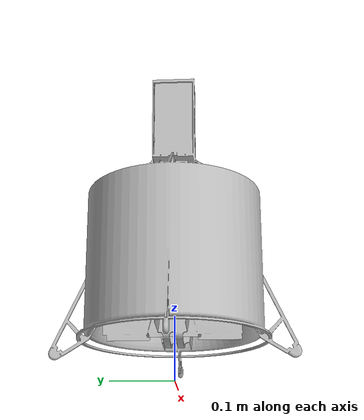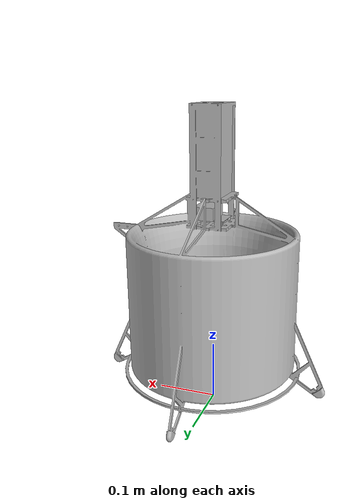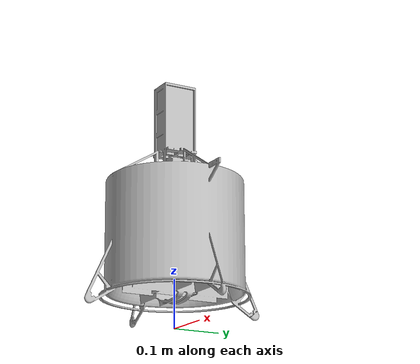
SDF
<?xml version='1.0'?>
<sdf version='1.5'>
  <model name='ductedfan'>
    <pose>0 0 0.35 0 0 0</pose>
    <link name='base_link'>
      <inertial>
        <mass>1.51082</mass>
        <inertia>
          <ixx>0.0276508</ixx>
          <ixy>0</ixy>
          <ixz>0.00026669</ixz>
          <iyy>0.0275263</iyy>
          <iyz>0.00028741</iyz>
          <izz>0.00619679</izz>
        </inertia>
        <pose>-4.1e-05 -7.6e-05 0.042069 0 -0 0</pose>
      </inertial>

      <visual name='visual'>
        <pose>0 0 0 0 -0 0</pose>
        <geometry>
          <mesh>
            <uri>/home/mch/gazebo/models/ductedfan/meshes/base_link.STL</uri>
            <scale>1 1 1</scale>
          </mesh>
        </geometry>
      </visual>
      <collision name='collision'>
        <laser_retro>0</laser_retro>
        <max_contacts>10</max_contacts>
        <pose>0 0 0 0 -0 0</pose>
        <geometry>
          <mesh>
            <uri>/home/mch/gazebo/models/ductedfan/meshes/base_link.STL</uri>
            <scale>1 1 1</scale>
          </mesh>
        </geometry>
      </collision>
    </link>
    <link name='csroll'>
      <inertial>
        <mass>0.138453</mass>
        <inertia>
          <ixx>9.877e-05</ixx>
          <ixy>0</ixy>
          <ixz>0</ixz>
          <iyy>0.00067119</iyy>
          <iyz>0.00068256</iyz>
          <izz>0.00068962</izz>
        </inertia>
        <pose>-4.1e-05 0.000748 -0.207851 0 -0 0</pose>
      </inertial>

      <visual name='visual'>
        <pose>0 0 0 0 -0 0</pose>
        <geometry>
          <mesh>
            <uri>/home/mch/gazebo/models/ductedfan/meshes/c1.STL</uri>
            <scale>1 1 1</scale>
          </mesh>
        </geometry>
      </visual>
      <collision name='collision'>
        <laser_retro>0</laser_retro>
        <max_contacts>10</max_contacts>
        <pose>0 0 0 0 -0 0</pose>
        <geometry>
          <mesh>
            <uri>/home/mch/gazebo/models/ductedfan/meshes/c1.STL</uri>
            <scale>1 1 1</scale>
          </mesh>
        </geometry>

      </collision>
    </link>
    <link name='cspitch'>
      <inertial>
        <mass>0.149682</mass>
        <inertia>
          <ixx>0.00066011</ixx>
          <ixy>8.528e-05</ixy>
          <ixz>0.00068962</ixz>
          <iyy>0.166667</iyy>
          <iyz>0</iyz>
          <izz>0.166667</izz>
        </inertia>
        <pose>0.00036 -7.6e-05 -0.208687 0 -0 0</pose>
      </inertial>

      <visual name='visual'>
        <pose>0 0 0 0 -0 0</pose>
        <geometry>
          <mesh>
            <uri>/home/mch/gazebo/models/ductedfan/meshes/c2.STL</uri>
            <scale>1 1 1</scale>
          </mesh>
        </geometry>
      </visual>
      <collision name='collision'>
        <laser_retro>0</laser_retro>
        <max_contacts>10</max_contacts>
        <pose>0 0 0 0 -0 0</pose>
        <geometry>
          <mesh>
            <uri>/home/mch/gazebo/models/ductedfan/meshes/c2.STL</uri>
            <scale>1 1 1</scale>
          </mesh>
        </geometry>
      </collision>
    </link>
    <link name='r1'>
      <inertial>
        <mass>0.015678</mass>
        <inertia>
          <ixx>1.851e-05</ixx>
          <ixy>0</ixy>
          <ixz>0</ixz>
          <iyy>1.855e-05</iyy>
          <iyz>0</iyz>
          <izz>3.648e-05</izz>
        </inertia>
        <pose>0.000403 0.000759 -0.071513 0 -0 0</pose>
      </inertial>

      <visual name='visual'>
        <pose>0 0 0 0 -0 0</pose>
        <geometry>
          <mesh>
            <uri>/home/mch/gazebo/models/ductedfan/meshes/r1.STL</uri>
            <scale>1 1 1</scale>
          </mesh>
        </geometry>

      </visual>
      <collision name='collision'>
        <laser_retro>0</laser_retro>
        <max_contacts>10</max_contacts>
        <pose>0 0 0 0 -0 0</pose>
        <geometry>
          <mesh>
            <uri>/home/mch/gazebo/models/ductedfan/meshes/r1.STL</uri>
            <scale>1 1 1</scale>
          </mesh>
        </geometry>

      </collision>
    </link>
    <link name='r2'>
      <inertial>
        <mass>0.015678</mass>
        <inertia>
          <ixx>1.851e-05</ixx>
          <ixy>0</ixy>
          <ixz>0</ixz>
          <iyy>1.855e-05</iyy>
          <iyz>0</iyz>
          <izz>3.648e-05</izz>
        </inertia>
        <pose>0.000403 0.000759 -0.154513 0 -0 0</pose>
      </inertial>

      <visual name='visual'>
        <pose>0 0 0 0 -0 0</pose>
        <geometry>
          <mesh>
            <uri>/home/mch/gazebo/models/ductedfan/meshes/r2.STL</uri>
            <scale>1 1 1</scale>
          </mesh>
        </geometry>

      </visual>
      <collision name='collision'>
        <laser_retro>0</laser_retro>
        <max_contacts>10</max_contacts>
        <pose>0 0 0 0 -0 0</pose>
        <geometry>
          <mesh>
            <uri>/home/mch/gazebo/models/ductedfan/meshes/r2.STL</uri>
            <scale>1 1 1</scale>
          </mesh>
        </geometry>

      </collision>
    </link>
    <joint name='csroll_joint' type='revolute'>
      <parent>base_link</parent>
      <child>csroll</child>
      <pose>0 0.00074 -0.19763 0 -0 0</pose>
      <axis>
        <xyz>1 0 0</xyz>
        <limit>
          <lower>-0.3491</lower>
          <upper>0.3491</upper>
          <effort>-1</effort>
          <velocity>-1</velocity>
        </limit>
        <dynamics>
          <damping>1.0</damping>
        </dynamics>
      </axis>
      <physics>
        <ode>
          <implicit_spring_damper>1</implicit_spring_damper>
        </ode>
      </physics>
    </joint>
    <joint name='cspitch_joint' type='revolute'>
      <parent>base_link</parent>
      <child>cspitch</child>
      <pose>0.00037 0 -0.19763 0 -0 0</pose>
      <axis>
        <xyz>0 1 0</xyz>
        <limit>
          <lower>-0.3491</lower>
          <upper>0.3491</upper>
          <effort>-1</effort>
          <velocity>-1</velocity>
        </limit>
        <dynamics>
          <damping>1.0</damping>
        </dynamics>
      </axis>
      <physics>
        <ode>
          <implicit_spring_damper>1</implicit_spring_damper>
        </ode>
      </physics>
    </joint>
    <joint name='r1_joint' type='revolute'>
      <parent>base_link</parent>
      <child>r1</child>
      <pose>0.000403 0.000759 -0.071513 0 -0 0</pose>
      <axis>
        <xyz>0 0 -1</xyz>
        <limit>
          <lower>-1e+12</lower>
          <upper>1e+12</upper>
          <effort>-1</effort>
          <velocity>-1</velocity>
        </limit>
        <dynamics>
          <damping>0.001</damping>
        </dynamics>
      </axis>
      <physics>
        <ode>
          <implicit_spring_damper>1</implicit_spring_damper>
        </ode>
      </physics>
    </joint>
    <joint name='r2_joint' type='revolute'>
      <parent>base_link</parent>
      <child>r2</child>
      <pose>0.000403 0.000759 -0.154513 0 -0 0</pose>
      <axis>
        <xyz>0 0 1</xyz>
        <limit>
          <lower>-1e+12</lower>
          <upper>1e+12</upper>
          <effort>-1</effort>
          <velocity>-1</velocity>
        </limit>
        <dynamics>
          <damping>0.001</damping>
        </dynamics>
      </axis>
      <physics>
        <ode>
          <implicit_spring_damper>1</implicit_spring_damper>
        </ode>
      </physics>
    </joint>
    <!-- Plugins for controlling the thrust and control surfaces -->
    <plugin name="ductedfan_control_plugin" filename="libDFPlugin.so">
      <r1>r1_joint</r1>
      <r2>r2_joint</r2>
      <propeller_max_rpm>2000</propeller_max_rpm>
      <csroll>csroll_joint</csroll>
      <cspitch>cspitch_joint</cspitch>
      <propeller_p_gain>0.001</propeller_p_gain>
      <propeller_i_gain>0</propeller_i_gain>
      <propeller_d_gain>0</propeller_d_gain>
      <surfaces_p_gain>0.001</surfaces_p_gain>
      <surfaces_i_gain>0</surfaces_i_gain>
      <surfaces_d_gain>0</surfaces_d_gain>
    </plugin>

  </model>
</sdf>
